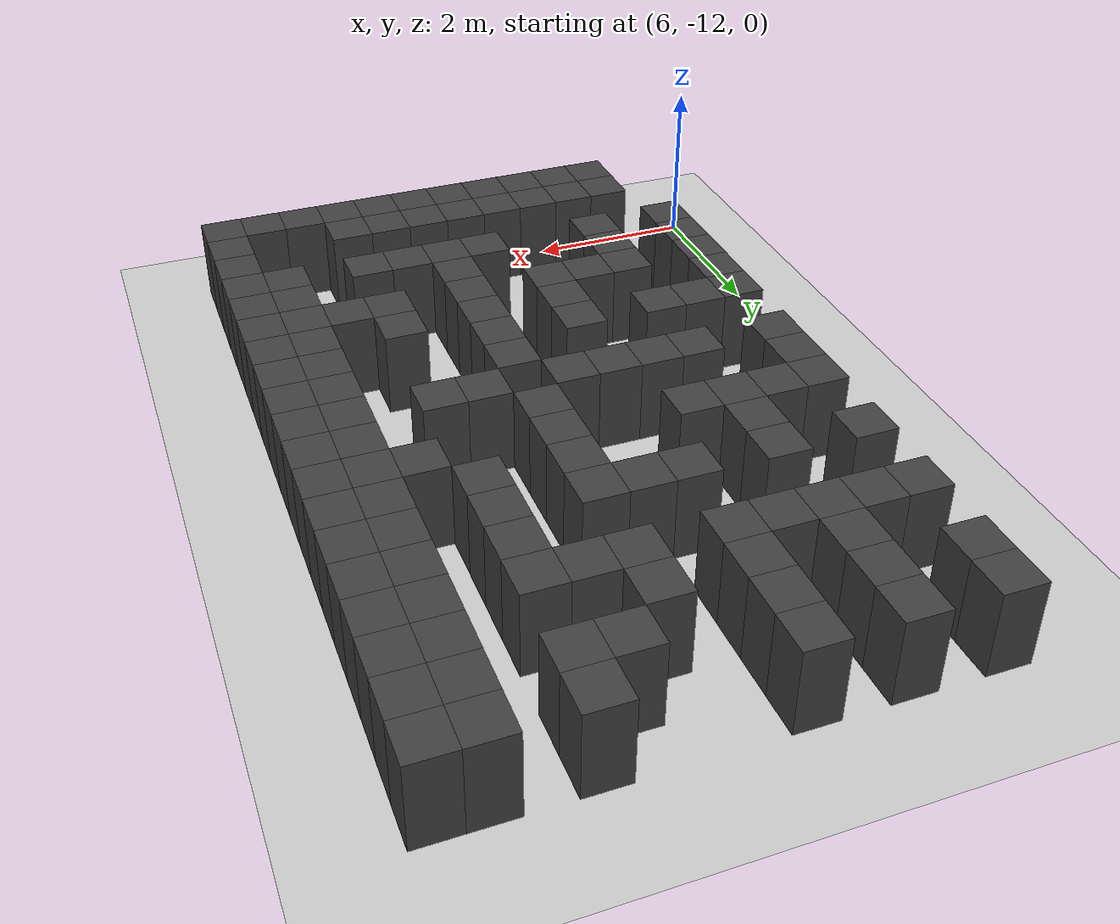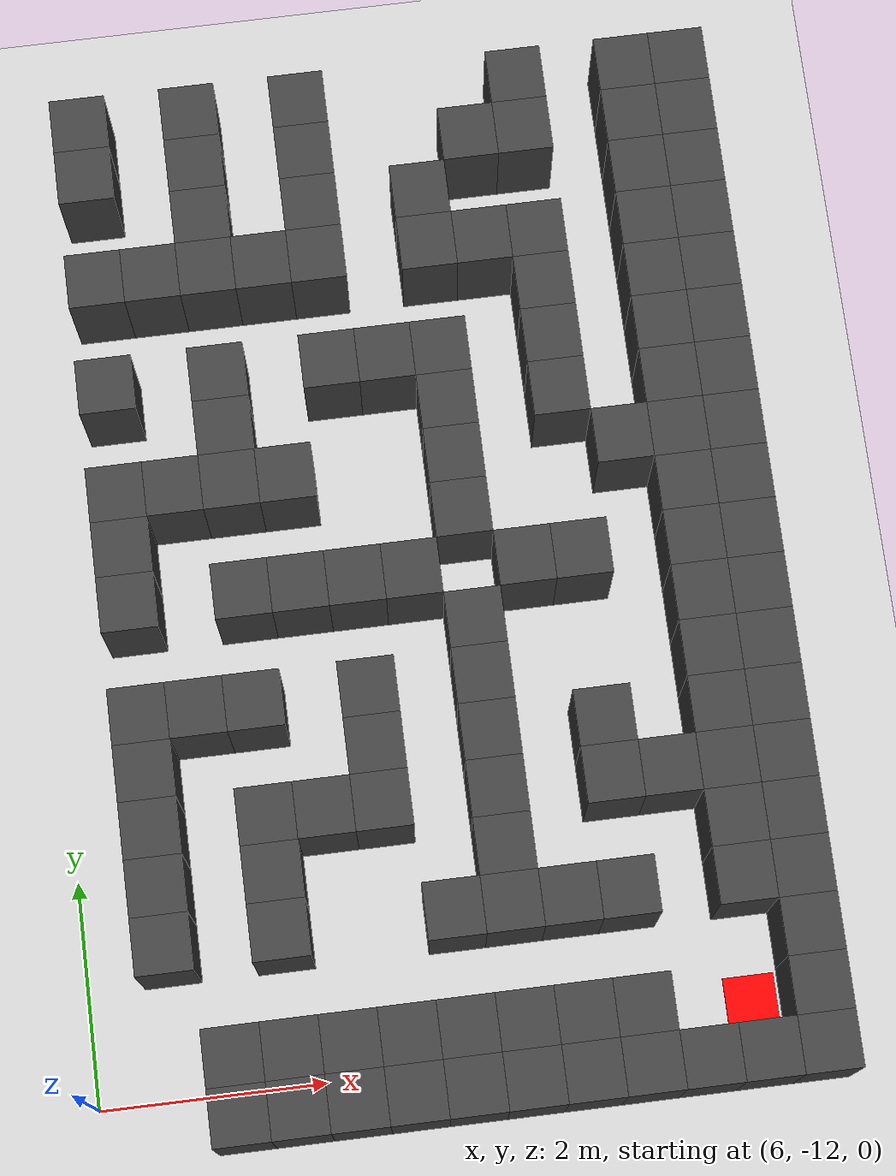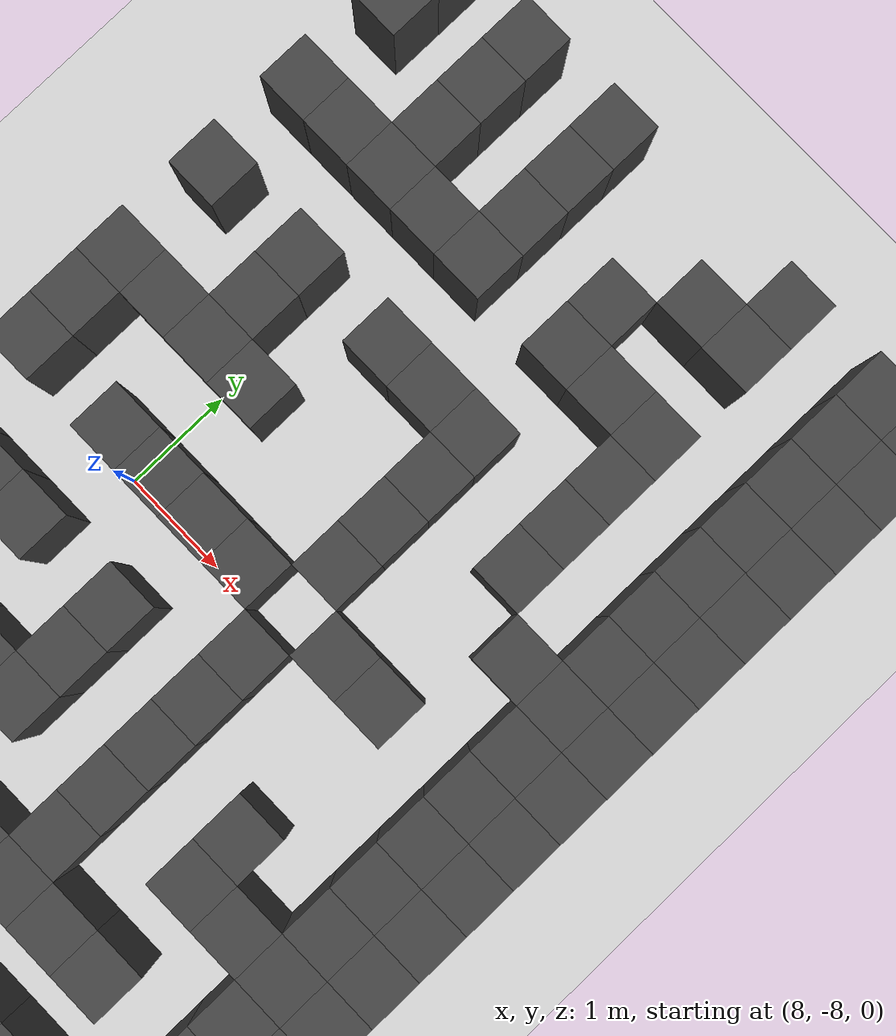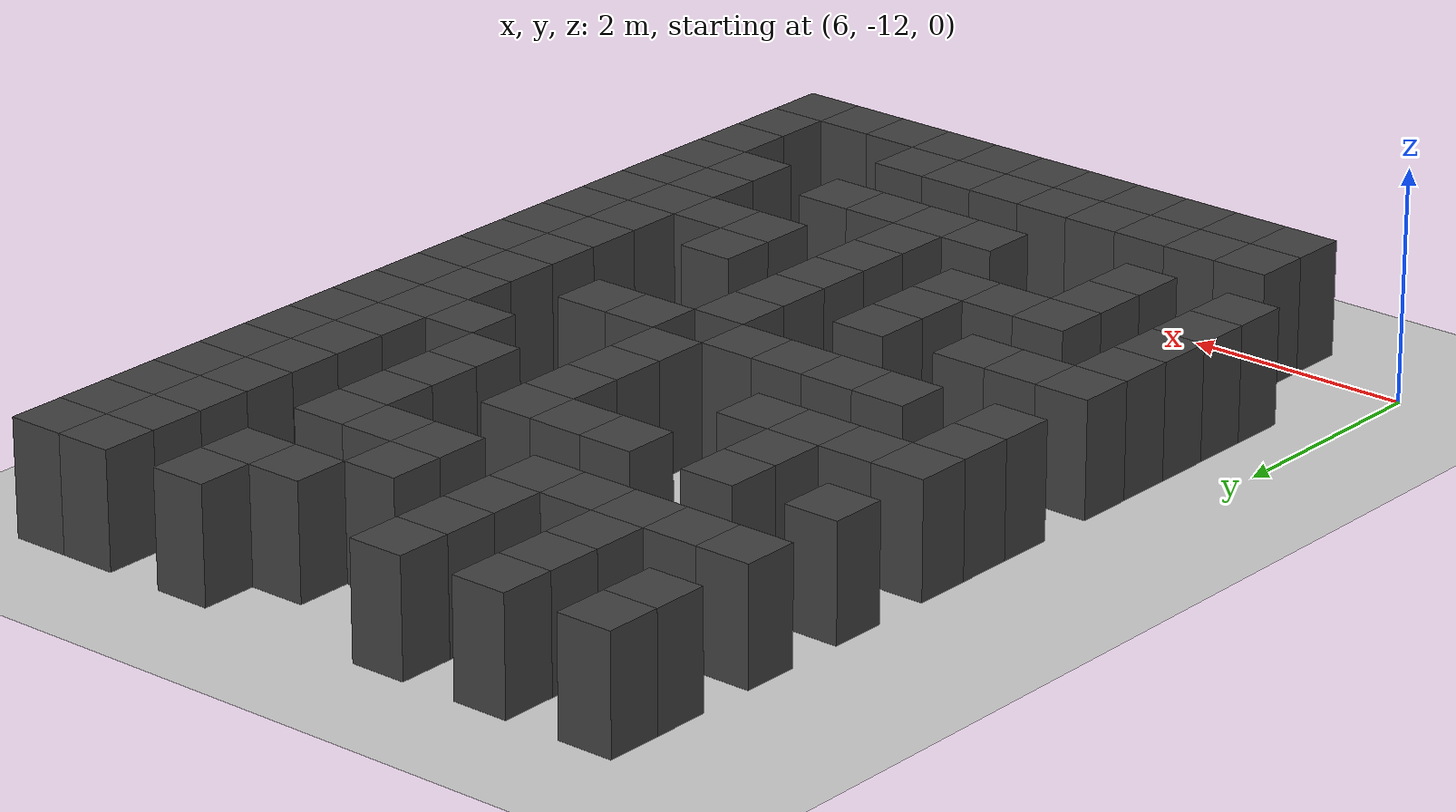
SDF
<sdf version="1.7">
 <world name="map_16884">
  <model name="ground_plane">
   <static>true</static>
   <link name="link">
    <collision name="collision">
     <geometry><plane><normal>0 0 1</normal><size>200 200</size></plane></geometry>
    </collision>
    <visual name="visual">
     <geometry><plane><normal>0 0 1</normal><size>200 200</size></plane></geometry>
     <material><ambient>0.8 0.8 0.8 1</ambient><diffuse>0.8 0.8 0.8 1</diffuse></material>
    </visual>
   </link>
  </model>
  <model name="maze_environment">
   <static>true</static>
   <link name="wall_768">
    <pose>6.750 -3.250 0.500 0 0 0</pose>
    <collision name="col"><geometry><box><size>0.5 0.5 1.0</size></box></geometry></collision>
    <visual name="vis">
     <geometry><box><size>0.5 0.5 1.0</size></box></geometry>
     <material><ambient>0.15 0.15 0.15 1</ambient><diffuse>0.25 0.25 0.25 1</diffuse></material>
    </visual>
   </link>
   <link name="wall_769">
    <pose>7.750 -3.250 0.500 0 0 0</pose>
    <collision name="col"><geometry><box><size>0.5 0.5 1.0</size></box></geometry></collision>
    <visual name="vis">
     <geometry><box><size>0.5 0.5 1.0</size></box></geometry>
     <material><ambient>0.15 0.15 0.15 1</ambient><diffuse>0.25 0.25 0.25 1</diffuse></material>
    </visual>
   </link>
   <link name="wall_770">
    <pose>8.750 -3.250 0.500 0 0 0</pose>
    <collision name="col"><geometry><box><size>0.5 0.5 1.0</size></box></geometry></collision>
    <visual name="vis">
     <geometry><box><size>0.5 0.5 1.0</size></box></geometry>
     <material><ambient>0.15 0.15 0.15 1</ambient><diffuse>0.25 0.25 0.25 1</diffuse></material>
    </visual>
   </link>
   <link name="wall_771">
    <pose>10.750 -3.250 0.500 0 0 0</pose>
    <collision name="col"><geometry><box><size>0.5 0.5 1.0</size></box></geometry></collision>
    <visual name="vis">
     <geometry><box><size>0.5 0.5 1.0</size></box></geometry>
     <material><ambient>0.15 0.15 0.15 1</ambient><diffuse>0.25 0.25 0.25 1</diffuse></material>
    </visual>
   </link>
   <link name="wall_772">
    <pose>11.750 -3.250 0.500 0 0 0</pose>
    <collision name="col"><geometry><box><size>0.5 0.5 1.0</size></box></geometry></collision>
    <visual name="vis">
     <geometry><box><size>0.5 0.5 1.0</size></box></geometry>
     <material><ambient>0.15 0.15 0.15 1</ambient><diffuse>0.25 0.25 0.25 1</diffuse></material>
    </visual>
   </link>
   <link name="wall_773">
    <pose>12.250 -3.250 0.500 0 0 0</pose>
    <collision name="col"><geometry><box><size>0.5 0.5 1.0</size></box></geometry></collision>
    <visual name="vis">
     <geometry><box><size>0.5 0.5 1.0</size></box></geometry>
     <material><ambient>0.15 0.15 0.15 1</ambient><diffuse>0.25 0.25 0.25 1</diffuse></material>
    </visual>
   </link>
   <link name="wall_800">
    <pose>6.750 -3.750 0.500 0 0 0</pose>
    <collision name="col"><geometry><box><size>0.5 0.5 1.0</size></box></geometry></collision>
    <visual name="vis">
     <geometry><box><size>0.5 0.5 1.0</size></box></geometry>
     <material><ambient>0.15 0.15 0.15 1</ambient><diffuse>0.25 0.25 0.25 1</diffuse></material>
    </visual>
   </link>
   <link name="wall_801">
    <pose>7.750 -3.750 0.500 0 0 0</pose>
    <collision name="col"><geometry><box><size>0.5 0.5 1.0</size></box></geometry></collision>
    <visual name="vis">
     <geometry><box><size>0.5 0.5 1.0</size></box></geometry>
     <material><ambient>0.15 0.15 0.15 1</ambient><diffuse>0.25 0.25 0.25 1</diffuse></material>
    </visual>
   </link>
   <link name="wall_802">
    <pose>8.750 -3.750 0.500 0 0 0</pose>
    <collision name="col"><geometry><box><size>0.5 0.5 1.0</size></box></geometry></collision>
    <visual name="vis">
     <geometry><box><size>0.5 0.5 1.0</size></box></geometry>
     <material><ambient>0.15 0.15 0.15 1</ambient><diffuse>0.25 0.25 0.25 1</diffuse></material>
    </visual>
   </link>
   <link name="wall_803">
    <pose>10.250 -3.750 0.500 0 0 0</pose>
    <collision name="col"><geometry><box><size>0.5 0.5 1.0</size></box></geometry></collision>
    <visual name="vis">
     <geometry><box><size>0.5 0.5 1.0</size></box></geometry>
     <material><ambient>0.15 0.15 0.15 1</ambient><diffuse>0.25 0.25 0.25 1</diffuse></material>
    </visual>
   </link>
   <link name="wall_804">
    <pose>10.750 -3.750 0.500 0 0 0</pose>
    <collision name="col"><geometry><box><size>0.5 0.5 1.0</size></box></geometry></collision>
    <visual name="vis">
     <geometry><box><size>0.5 0.5 1.0</size></box></geometry>
     <material><ambient>0.15 0.15 0.15 1</ambient><diffuse>0.25 0.25 0.25 1</diffuse></material>
    </visual>
   </link>
   <link name="wall_805">
    <pose>11.750 -3.750 0.500 0 0 0</pose>
    <collision name="col"><geometry><box><size>0.5 0.5 1.0</size></box></geometry></collision>
    <visual name="vis">
     <geometry><box><size>0.5 0.5 1.0</size></box></geometry>
     <material><ambient>0.15 0.15 0.15 1</ambient><diffuse>0.25 0.25 0.25 1</diffuse></material>
    </visual>
   </link>
   <link name="wall_806">
    <pose>12.250 -3.750 0.500 0 0 0</pose>
    <collision name="col"><geometry><box><size>0.5 0.5 1.0</size></box></geometry></collision>
    <visual name="vis">
     <geometry><box><size>0.5 0.5 1.0</size></box></geometry>
     <material><ambient>0.15 0.15 0.15 1</ambient><diffuse>0.25 0.25 0.25 1</diffuse></material>
    </visual>
   </link>
   <link name="wall_814">
    <pose>7.750 -4.250 0.500 0 0 0</pose>
    <collision name="col"><geometry><box><size>0.5 0.5 1.0</size></box></geometry></collision>
    <visual name="vis">
     <geometry><box><size>0.5 0.5 1.0</size></box></geometry>
     <material><ambient>0.15 0.15 0.15 1</ambient><diffuse>0.25 0.25 0.25 1</diffuse></material>
    </visual>
   </link>
   <link name="wall_815">
    <pose>8.750 -4.250 0.500 0 0 0</pose>
    <collision name="col"><geometry><box><size>0.5 0.5 1.0</size></box></geometry></collision>
    <visual name="vis">
     <geometry><box><size>0.5 0.5 1.0</size></box></geometry>
     <material><ambient>0.15 0.15 0.15 1</ambient><diffuse>0.25 0.25 0.25 1</diffuse></material>
    </visual>
   </link>
   <link name="wall_816">
    <pose>9.750 -4.250 0.500 0 0 0</pose>
    <collision name="col"><geometry><box><size>0.5 0.5 1.0</size></box></geometry></collision>
    <visual name="vis">
     <geometry><box><size>0.5 0.5 1.0</size></box></geometry>
     <material><ambient>0.15 0.15 0.15 1</ambient><diffuse>0.25 0.25 0.25 1</diffuse></material>
    </visual>
   </link>
   <link name="wall_817">
    <pose>11.750 -4.250 0.500 0 0 0</pose>
    <collision name="col"><geometry><box><size>0.5 0.5 1.0</size></box></geometry></collision>
    <visual name="vis">
     <geometry><box><size>0.5 0.5 1.0</size></box></geometry>
     <material><ambient>0.15 0.15 0.15 1</ambient><diffuse>0.25 0.25 0.25 1</diffuse></material>
    </visual>
   </link>
   <link name="wall_818">
    <pose>12.250 -4.250 0.500 0 0 0</pose>
    <collision name="col"><geometry><box><size>0.5 0.5 1.0</size></box></geometry></collision>
    <visual name="vis">
     <geometry><box><size>0.5 0.5 1.0</size></box></geometry>
     <material><ambient>0.15 0.15 0.15 1</ambient><diffuse>0.25 0.25 0.25 1</diffuse></material>
    </visual>
   </link>
   <link name="wall_850">
    <pose>6.750 -4.750 0.500 0 0 0</pose>
    <collision name="col"><geometry><box><size>0.5 0.5 1.0</size></box></geometry></collision>
    <visual name="vis">
     <geometry><box><size>0.5 0.5 1.0</size></box></geometry>
     <material><ambient>0.15 0.15 0.15 1</ambient><diffuse>0.25 0.25 0.25 1</diffuse></material>
    </visual>
   </link>
   <link name="wall_851">
    <pose>7.250 -4.750 0.500 0 0 0</pose>
    <collision name="col"><geometry><box><size>0.5 0.5 1.0</size></box></geometry></collision>
    <visual name="vis">
     <geometry><box><size>0.5 0.5 1.0</size></box></geometry>
     <material><ambient>0.15 0.15 0.15 1</ambient><diffuse>0.25 0.25 0.25 1</diffuse></material>
    </visual>
   </link>
   <link name="wall_852">
    <pose>7.750 -4.750 0.500 0 0 0</pose>
    <collision name="col"><geometry><box><size>0.5 0.5 1.0</size></box></geometry></collision>
    <visual name="vis">
     <geometry><box><size>0.5 0.5 1.0</size></box></geometry>
     <material><ambient>0.15 0.15 0.15 1</ambient><diffuse>0.25 0.25 0.25 1</diffuse></material>
    </visual>
   </link>
   <link name="wall_853">
    <pose>8.250 -4.750 0.500 0 0 0</pose>
    <collision name="col"><geometry><box><size>0.5 0.5 1.0</size></box></geometry></collision>
    <visual name="vis">
     <geometry><box><size>0.5 0.5 1.0</size></box></geometry>
     <material><ambient>0.15 0.15 0.15 1</ambient><diffuse>0.25 0.25 0.25 1</diffuse></material>
    </visual>
   </link>
   <link name="wall_854">
    <pose>8.750 -4.750 0.500 0 0 0</pose>
    <collision name="col"><geometry><box><size>0.5 0.5 1.0</size></box></geometry></collision>
    <visual name="vis">
     <geometry><box><size>0.5 0.5 1.0</size></box></geometry>
     <material><ambient>0.15 0.15 0.15 1</ambient><diffuse>0.25 0.25 0.25 1</diffuse></material>
    </visual>
   </link>
   <link name="wall_855">
    <pose>9.750 -4.750 0.500 0 0 0</pose>
    <collision name="col"><geometry><box><size>0.5 0.5 1.0</size></box></geometry></collision>
    <visual name="vis">
     <geometry><box><size>0.5 0.5 1.0</size></box></geometry>
     <material><ambient>0.15 0.15 0.15 1</ambient><diffuse>0.25 0.25 0.25 1</diffuse></material>
    </visual>
   </link>
   <link name="wall_856">
    <pose>10.250 -4.750 0.500 0 0 0</pose>
    <collision name="col"><geometry><box><size>0.5 0.5 1.0</size></box></geometry></collision>
    <visual name="vis">
     <geometry><box><size>0.5 0.5 1.0</size></box></geometry>
     <material><ambient>0.15 0.15 0.15 1</ambient><diffuse>0.25 0.25 0.25 1</diffuse></material>
    </visual>
   </link>
   <link name="wall_857">
    <pose>10.750 -4.750 0.500 0 0 0</pose>
    <collision name="col"><geometry><box><size>0.5 0.5 1.0</size></box></geometry></collision>
    <visual name="vis">
     <geometry><box><size>0.5 0.5 1.0</size></box></geometry>
     <material><ambient>0.15 0.15 0.15 1</ambient><diffuse>0.25 0.25 0.25 1</diffuse></material>
    </visual>
   </link>
   <link name="wall_858">
    <pose>11.750 -4.750 0.500 0 0 0</pose>
    <collision name="col"><geometry><box><size>0.5 0.5 1.0</size></box></geometry></collision>
    <visual name="vis">
     <geometry><box><size>0.5 0.5 1.0</size></box></geometry>
     <material><ambient>0.15 0.15 0.15 1</ambient><diffuse>0.25 0.25 0.25 1</diffuse></material>
    </visual>
   </link>
   <link name="wall_859">
    <pose>12.250 -4.750 0.500 0 0 0</pose>
    <collision name="col"><geometry><box><size>0.5 0.5 1.0</size></box></geometry></collision>
    <visual name="vis">
     <geometry><box><size>0.5 0.5 1.0</size></box></geometry>
     <material><ambient>0.15 0.15 0.15 1</ambient><diffuse>0.25 0.25 0.25 1</diffuse></material>
    </visual>
   </link>
   <link name="wall_868">
    <pose>10.750 -5.250 0.500 0 0 0</pose>
    <collision name="col"><geometry><box><size>0.5 0.5 1.0</size></box></geometry></collision>
    <visual name="vis">
     <geometry><box><size>0.5 0.5 1.0</size></box></geometry>
     <material><ambient>0.15 0.15 0.15 1</ambient><diffuse>0.25 0.25 0.25 1</diffuse></material>
    </visual>
   </link>
   <link name="wall_869">
    <pose>11.750 -5.250 0.500 0 0 0</pose>
    <collision name="col"><geometry><box><size>0.5 0.5 1.0</size></box></geometry></collision>
    <visual name="vis">
     <geometry><box><size>0.5 0.5 1.0</size></box></geometry>
     <material><ambient>0.15 0.15 0.15 1</ambient><diffuse>0.25 0.25 0.25 1</diffuse></material>
    </visual>
   </link>
   <link name="wall_870">
    <pose>12.250 -5.250 0.500 0 0 0</pose>
    <collision name="col"><geometry><box><size>0.5 0.5 1.0</size></box></geometry></collision>
    <visual name="vis">
     <geometry><box><size>0.5 0.5 1.0</size></box></geometry>
     <material><ambient>0.15 0.15 0.15 1</ambient><diffuse>0.25 0.25 0.25 1</diffuse></material>
    </visual>
   </link>
   <link name="wall_898">
    <pose>6.750 -5.750 0.500 0 0 0</pose>
    <collision name="col"><geometry><box><size>0.5 0.5 1.0</size></box></geometry></collision>
    <visual name="vis">
     <geometry><box><size>0.5 0.5 1.0</size></box></geometry>
     <material><ambient>0.15 0.15 0.15 1</ambient><diffuse>0.25 0.25 0.25 1</diffuse></material>
    </visual>
   </link>
   <link name="wall_899">
    <pose>7.750 -5.750 0.500 0 0 0</pose>
    <collision name="col"><geometry><box><size>0.5 0.5 1.0</size></box></geometry></collision>
    <visual name="vis">
     <geometry><box><size>0.5 0.5 1.0</size></box></geometry>
     <material><ambient>0.15 0.15 0.15 1</ambient><diffuse>0.25 0.25 0.25 1</diffuse></material>
    </visual>
   </link>
   <link name="wall_900">
    <pose>8.750 -5.750 0.500 0 0 0</pose>
    <collision name="col"><geometry><box><size>0.5 0.5 1.0</size></box></geometry></collision>
    <visual name="vis">
     <geometry><box><size>0.5 0.5 1.0</size></box></geometry>
     <material><ambient>0.15 0.15 0.15 1</ambient><diffuse>0.25 0.25 0.25 1</diffuse></material>
    </visual>
   </link>
   <link name="wall_901">
    <pose>9.250 -5.750 0.500 0 0 0</pose>
    <collision name="col"><geometry><box><size>0.5 0.5 1.0</size></box></geometry></collision>
    <visual name="vis">
     <geometry><box><size>0.5 0.5 1.0</size></box></geometry>
     <material><ambient>0.15 0.15 0.15 1</ambient><diffuse>0.25 0.25 0.25 1</diffuse></material>
    </visual>
   </link>
   <link name="wall_902">
    <pose>9.750 -5.750 0.500 0 0 0</pose>
    <collision name="col"><geometry><box><size>0.5 0.5 1.0</size></box></geometry></collision>
    <visual name="vis">
     <geometry><box><size>0.5 0.5 1.0</size></box></geometry>
     <material><ambient>0.15 0.15 0.15 1</ambient><diffuse>0.25 0.25 0.25 1</diffuse></material>
    </visual>
   </link>
   <link name="wall_903">
    <pose>10.750 -5.750 0.500 0 0 0</pose>
    <collision name="col"><geometry><box><size>0.5 0.5 1.0</size></box></geometry></collision>
    <visual name="vis">
     <geometry><box><size>0.5 0.5 1.0</size></box></geometry>
     <material><ambient>0.15 0.15 0.15 1</ambient><diffuse>0.25 0.25 0.25 1</diffuse></material>
    </visual>
   </link>
   <link name="wall_904">
    <pose>11.750 -5.750 0.500 0 0 0</pose>
    <collision name="col"><geometry><box><size>0.5 0.5 1.0</size></box></geometry></collision>
    <visual name="vis">
     <geometry><box><size>0.5 0.5 1.0</size></box></geometry>
     <material><ambient>0.15 0.15 0.15 1</ambient><diffuse>0.25 0.25 0.25 1</diffuse></material>
    </visual>
   </link>
   <link name="wall_905">
    <pose>12.250 -5.750 0.500 0 0 0</pose>
    <collision name="col"><geometry><box><size>0.5 0.5 1.0</size></box></geometry></collision>
    <visual name="vis">
     <geometry><box><size>0.5 0.5 1.0</size></box></geometry>
     <material><ambient>0.15 0.15 0.15 1</ambient><diffuse>0.25 0.25 0.25 1</diffuse></material>
    </visual>
   </link>
   <link name="wall_916">
    <pose>7.750 -6.250 0.500 0 0 0</pose>
    <collision name="col"><geometry><box><size>0.5 0.5 1.0</size></box></geometry></collision>
    <visual name="vis">
     <geometry><box><size>0.5 0.5 1.0</size></box></geometry>
     <material><ambient>0.15 0.15 0.15 1</ambient><diffuse>0.25 0.25 0.25 1</diffuse></material>
    </visual>
   </link>
   <link name="wall_917">
    <pose>9.750 -6.250 0.500 0 0 0</pose>
    <collision name="col"><geometry><box><size>0.5 0.5 1.0</size></box></geometry></collision>
    <visual name="vis">
     <geometry><box><size>0.5 0.5 1.0</size></box></geometry>
     <material><ambient>0.15 0.15 0.15 1</ambient><diffuse>0.25 0.25 0.25 1</diffuse></material>
    </visual>
   </link>
   <link name="wall_918">
    <pose>10.750 -6.250 0.500 0 0 0</pose>
    <collision name="col"><geometry><box><size>0.5 0.5 1.0</size></box></geometry></collision>
    <visual name="vis">
     <geometry><box><size>0.5 0.5 1.0</size></box></geometry>
     <material><ambient>0.15 0.15 0.15 1</ambient><diffuse>0.25 0.25 0.25 1</diffuse></material>
    </visual>
   </link>
   <link name="wall_919">
    <pose>11.750 -6.250 0.500 0 0 0</pose>
    <collision name="col"><geometry><box><size>0.5 0.5 1.0</size></box></geometry></collision>
    <visual name="vis">
     <geometry><box><size>0.5 0.5 1.0</size></box></geometry>
     <material><ambient>0.15 0.15 0.15 1</ambient><diffuse>0.25 0.25 0.25 1</diffuse></material>
    </visual>
   </link>
   <link name="wall_920">
    <pose>12.250 -6.250 0.500 0 0 0</pose>
    <collision name="col"><geometry><box><size>0.5 0.5 1.0</size></box></geometry></collision>
    <visual name="vis">
     <geometry><box><size>0.5 0.5 1.0</size></box></geometry>
     <material><ambient>0.15 0.15 0.15 1</ambient><diffuse>0.25 0.25 0.25 1</diffuse></material>
    </visual>
   </link>
   <link name="wall_945">
    <pose>6.750 -6.750 0.500 0 0 0</pose>
    <collision name="col"><geometry><box><size>0.5 0.5 1.0</size></box></geometry></collision>
    <visual name="vis">
     <geometry><box><size>0.5 0.5 1.0</size></box></geometry>
     <material><ambient>0.15 0.15 0.15 1</ambient><diffuse>0.25 0.25 0.25 1</diffuse></material>
    </visual>
   </link>
   <link name="wall_946">
    <pose>7.250 -6.750 0.500 0 0 0</pose>
    <collision name="col"><geometry><box><size>0.5 0.5 1.0</size></box></geometry></collision>
    <visual name="vis">
     <geometry><box><size>0.5 0.5 1.0</size></box></geometry>
     <material><ambient>0.15 0.15 0.15 1</ambient><diffuse>0.25 0.25 0.25 1</diffuse></material>
    </visual>
   </link>
   <link name="wall_947">
    <pose>7.750 -6.750 0.500 0 0 0</pose>
    <collision name="col"><geometry><box><size>0.5 0.5 1.0</size></box></geometry></collision>
    <visual name="vis">
     <geometry><box><size>0.5 0.5 1.0</size></box></geometry>
     <material><ambient>0.15 0.15 0.15 1</ambient><diffuse>0.25 0.25 0.25 1</diffuse></material>
    </visual>
   </link>
   <link name="wall_948">
    <pose>8.250 -6.750 0.500 0 0 0</pose>
    <collision name="col"><geometry><box><size>0.5 0.5 1.0</size></box></geometry></collision>
    <visual name="vis">
     <geometry><box><size>0.5 0.5 1.0</size></box></geometry>
     <material><ambient>0.15 0.15 0.15 1</ambient><diffuse>0.25 0.25 0.25 1</diffuse></material>
    </visual>
   </link>
   <link name="wall_949">
    <pose>9.750 -6.750 0.500 0 0 0</pose>
    <collision name="col"><geometry><box><size>0.5 0.5 1.0</size></box></geometry></collision>
    <visual name="vis">
     <geometry><box><size>0.5 0.5 1.0</size></box></geometry>
     <material><ambient>0.15 0.15 0.15 1</ambient><diffuse>0.25 0.25 0.25 1</diffuse></material>
    </visual>
   </link>
   <link name="wall_950">
    <pose>11.250 -6.750 0.500 0 0 0</pose>
    <collision name="col"><geometry><box><size>0.5 0.5 1.0</size></box></geometry></collision>
    <visual name="vis">
     <geometry><box><size>0.5 0.5 1.0</size></box></geometry>
     <material><ambient>0.15 0.15 0.15 1</ambient><diffuse>0.25 0.25 0.25 1</diffuse></material>
    </visual>
   </link>
   <link name="wall_951">
    <pose>11.750 -6.750 0.500 0 0 0</pose>
    <collision name="col"><geometry><box><size>0.5 0.5 1.0</size></box></geometry></collision>
    <visual name="vis">
     <geometry><box><size>0.5 0.5 1.0</size></box></geometry>
     <material><ambient>0.15 0.15 0.15 1</ambient><diffuse>0.25 0.25 0.25 1</diffuse></material>
    </visual>
   </link>
   <link name="wall_952">
    <pose>12.250 -6.750 0.500 0 0 0</pose>
    <collision name="col"><geometry><box><size>0.5 0.5 1.0</size></box></geometry></collision>
    <visual name="vis">
     <geometry><box><size>0.5 0.5 1.0</size></box></geometry>
     <material><ambient>0.15 0.15 0.15 1</ambient><diffuse>0.25 0.25 0.25 1</diffuse></material>
    </visual>
   </link>
   <link name="wall_963">
    <pose>6.750 -7.250 0.500 0 0 0</pose>
    <collision name="col"><geometry><box><size>0.5 0.5 1.0</size></box></geometry></collision>
    <visual name="vis">
     <geometry><box><size>0.5 0.5 1.0</size></box></geometry>
     <material><ambient>0.15 0.15 0.15 1</ambient><diffuse>0.25 0.25 0.25 1</diffuse></material>
    </visual>
   </link>
   <link name="wall_964">
    <pose>9.750 -7.250 0.500 0 0 0</pose>
    <collision name="col"><geometry><box><size>0.5 0.5 1.0</size></box></geometry></collision>
    <visual name="vis">
     <geometry><box><size>0.5 0.5 1.0</size></box></geometry>
     <material><ambient>0.15 0.15 0.15 1</ambient><diffuse>0.25 0.25 0.25 1</diffuse></material>
    </visual>
   </link>
   <link name="wall_965">
    <pose>11.750 -7.250 0.500 0 0 0</pose>
    <collision name="col"><geometry><box><size>0.5 0.5 1.0</size></box></geometry></collision>
    <visual name="vis">
     <geometry><box><size>0.5 0.5 1.0</size></box></geometry>
     <material><ambient>0.15 0.15 0.15 1</ambient><diffuse>0.25 0.25 0.25 1</diffuse></material>
    </visual>
   </link>
   <link name="wall_966">
    <pose>12.250 -7.250 0.500 0 0 0</pose>
    <collision name="col"><geometry><box><size>0.5 0.5 1.0</size></box></geometry></collision>
    <visual name="vis">
     <geometry><box><size>0.5 0.5 1.0</size></box></geometry>
     <material><ambient>0.15 0.15 0.15 1</ambient><diffuse>0.25 0.25 0.25 1</diffuse></material>
    </visual>
   </link>
   <link name="wall_994">
    <pose>6.750 -7.750 0.500 0 0 0</pose>
    <collision name="col"><geometry><box><size>0.5 0.5 1.0</size></box></geometry></collision>
    <visual name="vis">
     <geometry><box><size>0.5 0.5 1.0</size></box></geometry>
     <material><ambient>0.15 0.15 0.15 1</ambient><diffuse>0.25 0.25 0.25 1</diffuse></material>
    </visual>
   </link>
   <link name="wall_995">
    <pose>7.750 -7.750 0.500 0 0 0</pose>
    <collision name="col"><geometry><box><size>0.5 0.5 1.0</size></box></geometry></collision>
    <visual name="vis">
     <geometry><box><size>0.5 0.5 1.0</size></box></geometry>
     <material><ambient>0.15 0.15 0.15 1</ambient><diffuse>0.25 0.25 0.25 1</diffuse></material>
    </visual>
   </link>
   <link name="wall_996">
    <pose>8.250 -7.750 0.500 0 0 0</pose>
    <collision name="col"><geometry><box><size>0.5 0.5 1.0</size></box></geometry></collision>
    <visual name="vis">
     <geometry><box><size>0.5 0.5 1.0</size></box></geometry>
     <material><ambient>0.15 0.15 0.15 1</ambient><diffuse>0.25 0.25 0.25 1</diffuse></material>
    </visual>
   </link>
   <link name="wall_997">
    <pose>8.750 -7.750 0.500 0 0 0</pose>
    <collision name="col"><geometry><box><size>0.5 0.5 1.0</size></box></geometry></collision>
    <visual name="vis">
     <geometry><box><size>0.5 0.5 1.0</size></box></geometry>
     <material><ambient>0.15 0.15 0.15 1</ambient><diffuse>0.25 0.25 0.25 1</diffuse></material>
    </visual>
   </link>
   <link name="wall_998">
    <pose>9.250 -7.750 0.500 0 0 0</pose>
    <collision name="col"><geometry><box><size>0.5 0.5 1.0</size></box></geometry></collision>
    <visual name="vis">
     <geometry><box><size>0.5 0.5 1.0</size></box></geometry>
     <material><ambient>0.15 0.15 0.15 1</ambient><diffuse>0.25 0.25 0.25 1</diffuse></material>
    </visual>
   </link>
   <link name="wall_999">
    <pose>10.250 -7.750 0.500 0 0 0</pose>
    <collision name="col"><geometry><box><size>0.5 0.5 1.0</size></box></geometry></collision>
    <visual name="vis">
     <geometry><box><size>0.5 0.5 1.0</size></box></geometry>
     <material><ambient>0.15 0.15 0.15 1</ambient><diffuse>0.25 0.25 0.25 1</diffuse></material>
    </visual>
   </link>
   <link name="wall_1000">
    <pose>10.750 -7.750 0.500 0 0 0</pose>
    <collision name="col"><geometry><box><size>0.5 0.5 1.0</size></box></geometry></collision>
    <visual name="vis">
     <geometry><box><size>0.5 0.5 1.0</size></box></geometry>
     <material><ambient>0.15 0.15 0.15 1</ambient><diffuse>0.25 0.25 0.25 1</diffuse></material>
    </visual>
   </link>
   <link name="wall_1001">
    <pose>11.750 -7.750 0.500 0 0 0</pose>
    <collision name="col"><geometry><box><size>0.5 0.5 1.0</size></box></geometry></collision>
    <visual name="vis">
     <geometry><box><size>0.5 0.5 1.0</size></box></geometry>
     <material><ambient>0.15 0.15 0.15 1</ambient><diffuse>0.25 0.25 0.25 1</diffuse></material>
    </visual>
   </link>
   <link name="wall_1002">
    <pose>12.250 -7.750 0.500 0 0 0</pose>
    <collision name="col"><geometry><box><size>0.5 0.5 1.0</size></box></geometry></collision>
    <visual name="vis">
     <geometry><box><size>0.5 0.5 1.0</size></box></geometry>
     <material><ambient>0.15 0.15 0.15 1</ambient><diffuse>0.25 0.25 0.25 1</diffuse></material>
    </visual>
   </link>
   <link name="wall_1012">
    <pose>9.750 -8.250 0.500 0 0 0</pose>
    <collision name="col"><geometry><box><size>0.5 0.5 1.0</size></box></geometry></collision>
    <visual name="vis">
     <geometry><box><size>0.5 0.5 1.0</size></box></geometry>
     <material><ambient>0.15 0.15 0.15 1</ambient><diffuse>0.25 0.25 0.25 1</diffuse></material>
    </visual>
   </link>
   <link name="wall_1013">
    <pose>11.750 -8.250 0.500 0 0 0</pose>
    <collision name="col"><geometry><box><size>0.5 0.5 1.0</size></box></geometry></collision>
    <visual name="vis">
     <geometry><box><size>0.5 0.5 1.0</size></box></geometry>
     <material><ambient>0.15 0.15 0.15 1</ambient><diffuse>0.25 0.25 0.25 1</diffuse></material>
    </visual>
   </link>
   <link name="wall_1014">
    <pose>12.250 -8.250 0.500 0 0 0</pose>
    <collision name="col"><geometry><box><size>0.5 0.5 1.0</size></box></geometry></collision>
    <visual name="vis">
     <geometry><box><size>0.5 0.5 1.0</size></box></geometry>
     <material><ambient>0.15 0.15 0.15 1</ambient><diffuse>0.25 0.25 0.25 1</diffuse></material>
    </visual>
   </link>
   <link name="wall_1040">
    <pose>6.750 -8.750 0.500 0 0 0</pose>
    <collision name="col"><geometry><box><size>0.5 0.5 1.0</size></box></geometry></collision>
    <visual name="vis">
     <geometry><box><size>0.5 0.5 1.0</size></box></geometry>
     <material><ambient>0.15 0.15 0.15 1</ambient><diffuse>0.25 0.25 0.25 1</diffuse></material>
    </visual>
   </link>
   <link name="wall_1041">
    <pose>7.250 -8.750 0.500 0 0 0</pose>
    <collision name="col"><geometry><box><size>0.5 0.5 1.0</size></box></geometry></collision>
    <visual name="vis">
     <geometry><box><size>0.5 0.5 1.0</size></box></geometry>
     <material><ambient>0.15 0.15 0.15 1</ambient><diffuse>0.25 0.25 0.25 1</diffuse></material>
    </visual>
   </link>
   <link name="wall_1042">
    <pose>7.750 -8.750 0.500 0 0 0</pose>
    <collision name="col"><geometry><box><size>0.5 0.5 1.0</size></box></geometry></collision>
    <visual name="vis">
     <geometry><box><size>0.5 0.5 1.0</size></box></geometry>
     <material><ambient>0.15 0.15 0.15 1</ambient><diffuse>0.25 0.25 0.25 1</diffuse></material>
    </visual>
   </link>
   <link name="wall_1043">
    <pose>8.750 -8.750 0.500 0 0 0</pose>
    <collision name="col"><geometry><box><size>0.5 0.5 1.0</size></box></geometry></collision>
    <visual name="vis">
     <geometry><box><size>0.5 0.5 1.0</size></box></geometry>
     <material><ambient>0.15 0.15 0.15 1</ambient><diffuse>0.25 0.25 0.25 1</diffuse></material>
    </visual>
   </link>
   <link name="wall_1044">
    <pose>9.750 -8.750 0.500 0 0 0</pose>
    <collision name="col"><geometry><box><size>0.5 0.5 1.0</size></box></geometry></collision>
    <visual name="vis">
     <geometry><box><size>0.5 0.5 1.0</size></box></geometry>
     <material><ambient>0.15 0.15 0.15 1</ambient><diffuse>0.25 0.25 0.25 1</diffuse></material>
    </visual>
   </link>
   <link name="wall_1045">
    <pose>11.750 -8.750 0.500 0 0 0</pose>
    <collision name="col"><geometry><box><size>0.5 0.5 1.0</size></box></geometry></collision>
    <visual name="vis">
     <geometry><box><size>0.5 0.5 1.0</size></box></geometry>
     <material><ambient>0.15 0.15 0.15 1</ambient><diffuse>0.25 0.25 0.25 1</diffuse></material>
    </visual>
   </link>
   <link name="wall_1046">
    <pose>12.250 -8.750 0.500 0 0 0</pose>
    <collision name="col"><geometry><box><size>0.5 0.5 1.0</size></box></geometry></collision>
    <visual name="vis">
     <geometry><box><size>0.5 0.5 1.0</size></box></geometry>
     <material><ambient>0.15 0.15 0.15 1</ambient><diffuse>0.25 0.25 0.25 1</diffuse></material>
    </visual>
   </link>
   <link name="wall_1058">
    <pose>6.750 -9.250 0.500 0 0 0</pose>
    <collision name="col"><geometry><box><size>0.5 0.5 1.0</size></box></geometry></collision>
    <visual name="vis">
     <geometry><box><size>0.5 0.5 1.0</size></box></geometry>
     <material><ambient>0.15 0.15 0.15 1</ambient><diffuse>0.25 0.25 0.25 1</diffuse></material>
    </visual>
   </link>
   <link name="wall_1059">
    <pose>8.750 -9.250 0.500 0 0 0</pose>
    <collision name="col"><geometry><box><size>0.5 0.5 1.0</size></box></geometry></collision>
    <visual name="vis">
     <geometry><box><size>0.5 0.5 1.0</size></box></geometry>
     <material><ambient>0.15 0.15 0.15 1</ambient><diffuse>0.25 0.25 0.25 1</diffuse></material>
    </visual>
   </link>
   <link name="wall_1060">
    <pose>9.750 -9.250 0.500 0 0 0</pose>
    <collision name="col"><geometry><box><size>0.5 0.5 1.0</size></box></geometry></collision>
    <visual name="vis">
     <geometry><box><size>0.5 0.5 1.0</size></box></geometry>
     <material><ambient>0.15 0.15 0.15 1</ambient><diffuse>0.25 0.25 0.25 1</diffuse></material>
    </visual>
   </link>
   <link name="wall_1061">
    <pose>10.750 -9.250 0.500 0 0 0</pose>
    <collision name="col"><geometry><box><size>0.5 0.5 1.0</size></box></geometry></collision>
    <visual name="vis">
     <geometry><box><size>0.5 0.5 1.0</size></box></geometry>
     <material><ambient>0.15 0.15 0.15 1</ambient><diffuse>0.25 0.25 0.25 1</diffuse></material>
    </visual>
   </link>
   <link name="wall_1062">
    <pose>11.750 -9.250 0.500 0 0 0</pose>
    <collision name="col"><geometry><box><size>0.5 0.5 1.0</size></box></geometry></collision>
    <visual name="vis">
     <geometry><box><size>0.5 0.5 1.0</size></box></geometry>
     <material><ambient>0.15 0.15 0.15 1</ambient><diffuse>0.25 0.25 0.25 1</diffuse></material>
    </visual>
   </link>
   <link name="wall_1063">
    <pose>12.250 -9.250 0.500 0 0 0</pose>
    <collision name="col"><geometry><box><size>0.5 0.5 1.0</size></box></geometry></collision>
    <visual name="vis">
     <geometry><box><size>0.5 0.5 1.0</size></box></geometry>
     <material><ambient>0.15 0.15 0.15 1</ambient><diffuse>0.25 0.25 0.25 1</diffuse></material>
    </visual>
   </link>
   <link name="wall_1091">
    <pose>6.750 -9.750 0.500 0 0 0</pose>
    <collision name="col"><geometry><box><size>0.5 0.5 1.0</size></box></geometry></collision>
    <visual name="vis">
     <geometry><box><size>0.5 0.5 1.0</size></box></geometry>
     <material><ambient>0.15 0.15 0.15 1</ambient><diffuse>0.25 0.25 0.25 1</diffuse></material>
    </visual>
   </link>
   <link name="wall_1092">
    <pose>7.750 -9.750 0.500 0 0 0</pose>
    <collision name="col"><geometry><box><size>0.5 0.5 1.0</size></box></geometry></collision>
    <visual name="vis">
     <geometry><box><size>0.5 0.5 1.0</size></box></geometry>
     <material><ambient>0.15 0.15 0.15 1</ambient><diffuse>0.25 0.25 0.25 1</diffuse></material>
    </visual>
   </link>
   <link name="wall_1093">
    <pose>8.250 -9.750 0.500 0 0 0</pose>
    <collision name="col"><geometry><box><size>0.5 0.5 1.0</size></box></geometry></collision>
    <visual name="vis">
     <geometry><box><size>0.5 0.5 1.0</size></box></geometry>
     <material><ambient>0.15 0.15 0.15 1</ambient><diffuse>0.25 0.25 0.25 1</diffuse></material>
    </visual>
   </link>
   <link name="wall_1094">
    <pose>8.750 -9.750 0.500 0 0 0</pose>
    <collision name="col"><geometry><box><size>0.5 0.5 1.0</size></box></geometry></collision>
    <visual name="vis">
     <geometry><box><size>0.5 0.5 1.0</size></box></geometry>
     <material><ambient>0.15 0.15 0.15 1</ambient><diffuse>0.25 0.25 0.25 1</diffuse></material>
    </visual>
   </link>
   <link name="wall_1095">
    <pose>9.750 -9.750 0.500 0 0 0</pose>
    <collision name="col"><geometry><box><size>0.5 0.5 1.0</size></box></geometry></collision>
    <visual name="vis">
     <geometry><box><size>0.5 0.5 1.0</size></box></geometry>
     <material><ambient>0.15 0.15 0.15 1</ambient><diffuse>0.25 0.25 0.25 1</diffuse></material>
    </visual>
   </link>
   <link name="wall_1096">
    <pose>10.750 -9.750 0.500 0 0 0</pose>
    <collision name="col"><geometry><box><size>0.5 0.5 1.0</size></box></geometry></collision>
    <visual name="vis">
     <geometry><box><size>0.5 0.5 1.0</size></box></geometry>
     <material><ambient>0.15 0.15 0.15 1</ambient><diffuse>0.25 0.25 0.25 1</diffuse></material>
    </visual>
   </link>
   <link name="wall_1097">
    <pose>11.250 -9.750 0.500 0 0 0</pose>
    <collision name="col"><geometry><box><size>0.5 0.5 1.0</size></box></geometry></collision>
    <visual name="vis">
     <geometry><box><size>0.5 0.5 1.0</size></box></geometry>
     <material><ambient>0.15 0.15 0.15 1</ambient><diffuse>0.25 0.25 0.25 1</diffuse></material>
    </visual>
   </link>
   <link name="wall_1098">
    <pose>11.750 -9.750 0.500 0 0 0</pose>
    <collision name="col"><geometry><box><size>0.5 0.5 1.0</size></box></geometry></collision>
    <visual name="vis">
     <geometry><box><size>0.5 0.5 1.0</size></box></geometry>
     <material><ambient>0.15 0.15 0.15 1</ambient><diffuse>0.25 0.25 0.25 1</diffuse></material>
    </visual>
   </link>
   <link name="wall_1099">
    <pose>12.250 -9.750 0.500 0 0 0</pose>
    <collision name="col"><geometry><box><size>0.5 0.5 1.0</size></box></geometry></collision>
    <visual name="vis">
     <geometry><box><size>0.5 0.5 1.0</size></box></geometry>
     <material><ambient>0.15 0.15 0.15 1</ambient><diffuse>0.25 0.25 0.25 1</diffuse></material>
    </visual>
   </link>
   <link name="wall_1108">
    <pose>6.750 -10.250 0.500 0 0 0</pose>
    <collision name="col"><geometry><box><size>0.5 0.5 1.0</size></box></geometry></collision>
    <visual name="vis">
     <geometry><box><size>0.5 0.5 1.0</size></box></geometry>
     <material><ambient>0.15 0.15 0.15 1</ambient><diffuse>0.25 0.25 0.25 1</diffuse></material>
    </visual>
   </link>
   <link name="wall_1109">
    <pose>7.750 -10.250 0.500 0 0 0</pose>
    <collision name="col"><geometry><box><size>0.5 0.5 1.0</size></box></geometry></collision>
    <visual name="vis">
     <geometry><box><size>0.5 0.5 1.0</size></box></geometry>
     <material><ambient>0.15 0.15 0.15 1</ambient><diffuse>0.25 0.25 0.25 1</diffuse></material>
    </visual>
   </link>
   <link name="wall_1110">
    <pose>9.750 -10.250 0.500 0 0 0</pose>
    <collision name="col"><geometry><box><size>0.5 0.5 1.0</size></box></geometry></collision>
    <visual name="vis">
     <geometry><box><size>0.5 0.5 1.0</size></box></geometry>
     <material><ambient>0.15 0.15 0.15 1</ambient><diffuse>0.25 0.25 0.25 1</diffuse></material>
    </visual>
   </link>
   <link name="wall_1111">
    <pose>11.750 -10.250 0.500 0 0 0</pose>
    <collision name="col"><geometry><box><size>0.5 0.5 1.0</size></box></geometry></collision>
    <visual name="vis">
     <geometry><box><size>0.5 0.5 1.0</size></box></geometry>
     <material><ambient>0.15 0.15 0.15 1</ambient><diffuse>0.25 0.25 0.25 1</diffuse></material>
    </visual>
   </link>
   <link name="wall_1112">
    <pose>12.250 -10.250 0.500 0 0 0</pose>
    <collision name="col"><geometry><box><size>0.5 0.5 1.0</size></box></geometry></collision>
    <visual name="vis">
     <geometry><box><size>0.5 0.5 1.0</size></box></geometry>
     <material><ambient>0.15 0.15 0.15 1</ambient><diffuse>0.25 0.25 0.25 1</diffuse></material>
    </visual>
   </link>
   <link name="wall_1140">
    <pose>6.750 -10.750 0.500 0 0 0</pose>
    <collision name="col"><geometry><box><size>0.5 0.5 1.0</size></box></geometry></collision>
    <visual name="vis">
     <geometry><box><size>0.5 0.5 1.0</size></box></geometry>
     <material><ambient>0.15 0.15 0.15 1</ambient><diffuse>0.25 0.25 0.25 1</diffuse></material>
    </visual>
   </link>
   <link name="wall_1141">
    <pose>7.750 -10.750 0.500 0 0 0</pose>
    <collision name="col"><geometry><box><size>0.5 0.5 1.0</size></box></geometry></collision>
    <visual name="vis">
     <geometry><box><size>0.5 0.5 1.0</size></box></geometry>
     <material><ambient>0.15 0.15 0.15 1</ambient><diffuse>0.25 0.25 0.25 1</diffuse></material>
    </visual>
   </link>
   <link name="wall_1142">
    <pose>9.250 -10.750 0.500 0 0 0</pose>
    <collision name="col"><geometry><box><size>0.5 0.5 1.0</size></box></geometry></collision>
    <visual name="vis">
     <geometry><box><size>0.5 0.5 1.0</size></box></geometry>
     <material><ambient>0.15 0.15 0.15 1</ambient><diffuse>0.25 0.25 0.25 1</diffuse></material>
    </visual>
   </link>
   <link name="wall_1143">
    <pose>9.750 -10.750 0.500 0 0 0</pose>
    <collision name="col"><geometry><box><size>0.5 0.5 1.0</size></box></geometry></collision>
    <visual name="vis">
     <geometry><box><size>0.5 0.5 1.0</size></box></geometry>
     <material><ambient>0.15 0.15 0.15 1</ambient><diffuse>0.25 0.25 0.25 1</diffuse></material>
    </visual>
   </link>
   <link name="wall_1144">
    <pose>10.250 -10.750 0.500 0 0 0</pose>
    <collision name="col"><geometry><box><size>0.5 0.5 1.0</size></box></geometry></collision>
    <visual name="vis">
     <geometry><box><size>0.5 0.5 1.0</size></box></geometry>
     <material><ambient>0.15 0.15 0.15 1</ambient><diffuse>0.25 0.25 0.25 1</diffuse></material>
    </visual>
   </link>
   <link name="wall_1145">
    <pose>10.750 -10.750 0.500 0 0 0</pose>
    <collision name="col"><geometry><box><size>0.5 0.5 1.0</size></box></geometry></collision>
    <visual name="vis">
     <geometry><box><size>0.5 0.5 1.0</size></box></geometry>
     <material><ambient>0.15 0.15 0.15 1</ambient><diffuse>0.25 0.25 0.25 1</diffuse></material>
    </visual>
   </link>
   <link name="wall_1146">
    <pose>11.750 -10.750 0.500 0 0 0</pose>
    <collision name="col"><geometry><box><size>0.5 0.5 1.0</size></box></geometry></collision>
    <visual name="vis">
     <geometry><box><size>0.5 0.5 1.0</size></box></geometry>
     <material><ambient>0.15 0.15 0.15 1</ambient><diffuse>0.25 0.25 0.25 1</diffuse></material>
    </visual>
   </link>
   <link name="wall_1147">
    <pose>12.250 -10.750 0.500 0 0 0</pose>
    <collision name="col"><geometry><box><size>0.5 0.5 1.0</size></box></geometry></collision>
    <visual name="vis">
     <geometry><box><size>0.5 0.5 1.0</size></box></geometry>
     <material><ambient>0.15 0.15 0.15 1</ambient><diffuse>0.25 0.25 0.25 1</diffuse></material>
    </visual>
   </link>
   <link name="wall_1152">
    <pose>12.250 -11.250 0.500 0 0 0</pose>
    <collision name="col"><geometry><box><size>0.5 0.5 1.0</size></box></geometry></collision>
    <visual name="vis">
     <geometry><box><size>0.5 0.5 1.0</size></box></geometry>
     <material><ambient>0.15 0.15 0.15 1</ambient><diffuse>0.25 0.25 0.25 1</diffuse></material>
    </visual>
   </link>
   <link name="wall_1192">
    <pose>7.250 -11.750 0.500 0 0 0</pose>
    <collision name="col"><geometry><box><size>0.5 0.5 1.0</size></box></geometry></collision>
    <visual name="vis">
     <geometry><box><size>0.5 0.5 1.0</size></box></geometry>
     <material><ambient>0.15 0.15 0.15 1</ambient><diffuse>0.25 0.25 0.25 1</diffuse></material>
    </visual>
   </link>
   <link name="wall_1193">
    <pose>7.750 -11.750 0.500 0 0 0</pose>
    <collision name="col"><geometry><box><size>0.5 0.5 1.0</size></box></geometry></collision>
    <visual name="vis">
     <geometry><box><size>0.5 0.5 1.0</size></box></geometry>
     <material><ambient>0.15 0.15 0.15 1</ambient><diffuse>0.25 0.25 0.25 1</diffuse></material>
    </visual>
   </link>
   <link name="wall_1194">
    <pose>8.250 -11.750 0.500 0 0 0</pose>
    <collision name="col"><geometry><box><size>0.5 0.5 1.0</size></box></geometry></collision>
    <visual name="vis">
     <geometry><box><size>0.5 0.5 1.0</size></box></geometry>
     <material><ambient>0.15 0.15 0.15 1</ambient><diffuse>0.25 0.25 0.25 1</diffuse></material>
    </visual>
   </link>
   <link name="wall_1195">
    <pose>8.750 -11.750 0.500 0 0 0</pose>
    <collision name="col"><geometry><box><size>0.5 0.5 1.0</size></box></geometry></collision>
    <visual name="vis">
     <geometry><box><size>0.5 0.5 1.0</size></box></geometry>
     <material><ambient>0.15 0.15 0.15 1</ambient><diffuse>0.25 0.25 0.25 1</diffuse></material>
    </visual>
   </link>
   <link name="wall_1196">
    <pose>9.250 -11.750 0.500 0 0 0</pose>
    <collision name="col"><geometry><box><size>0.5 0.5 1.0</size></box></geometry></collision>
    <visual name="vis">
     <geometry><box><size>0.5 0.5 1.0</size></box></geometry>
     <material><ambient>0.15 0.15 0.15 1</ambient><diffuse>0.25 0.25 0.25 1</diffuse></material>
    </visual>
   </link>
   <link name="wall_1197">
    <pose>9.750 -11.750 0.500 0 0 0</pose>
    <collision name="col"><geometry><box><size>0.5 0.5 1.0</size></box></geometry></collision>
    <visual name="vis">
     <geometry><box><size>0.5 0.5 1.0</size></box></geometry>
     <material><ambient>0.15 0.15 0.15 1</ambient><diffuse>0.25 0.25 0.25 1</diffuse></material>
    </visual>
   </link>
   <link name="wall_1198">
    <pose>10.250 -11.750 0.500 0 0 0</pose>
    <collision name="col"><geometry><box><size>0.5 0.5 1.0</size></box></geometry></collision>
    <visual name="vis">
     <geometry><box><size>0.5 0.5 1.0</size></box></geometry>
     <material><ambient>0.15 0.15 0.15 1</ambient><diffuse>0.25 0.25 0.25 1</diffuse></material>
    </visual>
   </link>
   <link name="wall_1199">
    <pose>10.750 -11.750 0.500 0 0 0</pose>
    <collision name="col"><geometry><box><size>0.5 0.5 1.0</size></box></geometry></collision>
    <visual name="vis">
     <geometry><box><size>0.5 0.5 1.0</size></box></geometry>
     <material><ambient>0.15 0.15 0.15 1</ambient><diffuse>0.25 0.25 0.25 1</diffuse></material>
    </visual>
   </link>
   <link name="wall_1200">
    <pose>12.250 -11.750 0.500 0 0 0</pose>
    <collision name="col"><geometry><box><size>0.5 0.5 1.0</size></box></geometry></collision>
    <visual name="vis">
     <geometry><box><size>0.5 0.5 1.0</size></box></geometry>
     <material><ambient>0.15 0.15 0.15 1</ambient><diffuse>0.25 0.25 0.25 1</diffuse></material>
    </visual>
   </link>
   <link name="wall_1240">
    <pose>7.250 -12.250 0.500 0 0 0</pose>
    <collision name="col"><geometry><box><size>0.5 0.5 1.0</size></box></geometry></collision>
    <visual name="vis">
     <geometry><box><size>0.5 0.5 1.0</size></box></geometry>
     <material><ambient>0.15 0.15 0.15 1</ambient><diffuse>0.25 0.25 0.25 1</diffuse></material>
    </visual>
   </link>
   <link name="wall_1241">
    <pose>7.750 -12.250 0.500 0 0 0</pose>
    <collision name="col"><geometry><box><size>0.5 0.5 1.0</size></box></geometry></collision>
    <visual name="vis">
     <geometry><box><size>0.5 0.5 1.0</size></box></geometry>
     <material><ambient>0.15 0.15 0.15 1</ambient><diffuse>0.25 0.25 0.25 1</diffuse></material>
    </visual>
   </link>
   <link name="wall_1242">
    <pose>8.250 -12.250 0.500 0 0 0</pose>
    <collision name="col"><geometry><box><size>0.5 0.5 1.0</size></box></geometry></collision>
    <visual name="vis">
     <geometry><box><size>0.5 0.5 1.0</size></box></geometry>
     <material><ambient>0.15 0.15 0.15 1</ambient><diffuse>0.25 0.25 0.25 1</diffuse></material>
    </visual>
   </link>
   <link name="wall_1243">
    <pose>8.750 -12.250 0.500 0 0 0</pose>
    <collision name="col"><geometry><box><size>0.5 0.5 1.0</size></box></geometry></collision>
    <visual name="vis">
     <geometry><box><size>0.5 0.5 1.0</size></box></geometry>
     <material><ambient>0.15 0.15 0.15 1</ambient><diffuse>0.25 0.25 0.25 1</diffuse></material>
    </visual>
   </link>
   <link name="wall_1244">
    <pose>9.250 -12.250 0.500 0 0 0</pose>
    <collision name="col"><geometry><box><size>0.5 0.5 1.0</size></box></geometry></collision>
    <visual name="vis">
     <geometry><box><size>0.5 0.5 1.0</size></box></geometry>
     <material><ambient>0.15 0.15 0.15 1</ambient><diffuse>0.25 0.25 0.25 1</diffuse></material>
    </visual>
   </link>
   <link name="wall_1245">
    <pose>9.750 -12.250 0.500 0 0 0</pose>
    <collision name="col"><geometry><box><size>0.5 0.5 1.0</size></box></geometry></collision>
    <visual name="vis">
     <geometry><box><size>0.5 0.5 1.0</size></box></geometry>
     <material><ambient>0.15 0.15 0.15 1</ambient><diffuse>0.25 0.25 0.25 1</diffuse></material>
    </visual>
   </link>
   <link name="wall_1246">
    <pose>10.250 -12.250 0.500 0 0 0</pose>
    <collision name="col"><geometry><box><size>0.5 0.5 1.0</size></box></geometry></collision>
    <visual name="vis">
     <geometry><box><size>0.5 0.5 1.0</size></box></geometry>
     <material><ambient>0.15 0.15 0.15 1</ambient><diffuse>0.25 0.25 0.25 1</diffuse></material>
    </visual>
   </link>
   <link name="wall_1247">
    <pose>10.750 -12.250 0.500 0 0 0</pose>
    <collision name="col"><geometry><box><size>0.5 0.5 1.0</size></box></geometry></collision>
    <visual name="vis">
     <geometry><box><size>0.5 0.5 1.0</size></box></geometry>
     <material><ambient>0.15 0.15 0.15 1</ambient><diffuse>0.25 0.25 0.25 1</diffuse></material>
    </visual>
   </link>
   <link name="wall_1248">
    <pose>11.250 -12.250 0.500 0 0 0</pose>
    <collision name="col"><geometry><box><size>0.5 0.5 1.0</size></box></geometry></collision>
    <visual name="vis">
     <geometry><box><size>0.5 0.5 1.0</size></box></geometry>
     <material><ambient>0.15 0.15 0.15 1</ambient><diffuse>0.25 0.25 0.25 1</diffuse></material>
    </visual>
   </link>
   <link name="wall_1249">
    <pose>11.750 -12.250 0.500 0 0 0</pose>
    <collision name="col"><geometry><box><size>0.5 0.5 1.0</size></box></geometry></collision>
    <visual name="vis">
     <geometry><box><size>0.5 0.5 1.0</size></box></geometry>
     <material><ambient>0.15 0.15 0.15 1</ambient><diffuse>0.25 0.25 0.25 1</diffuse></material>
    </visual>
   </link>
   <link name="wall_1250">
    <pose>12.250 -12.250 0.500 0 0 0</pose>
    <collision name="col"><geometry><box><size>0.5 0.5 1.0</size></box></geometry></collision>
    <visual name="vis">
     <geometry><box><size>0.5 0.5 1.0</size></box></geometry>
     <material><ambient>0.15 0.15 0.15 1</ambient><diffuse>0.25 0.25 0.25 1</diffuse></material>
    </visual>
   </link>
   <link name="goal_zone">
    <pose>11.750 -11.750 0.005 0 0 0</pose>
    <visual name="vis">
     <geometry><box><size>0.45 0.45 0.01</size></box></geometry>
     <material>
      <ambient>1.0 0.0 0.0 1</ambient>
      <diffuse>1.0 0.0 0.0 1</diffuse>
      <emissive>0.60 0.00 0.00 1</emissive>
     </material>
    </visual>
   </link>
  </model>
 </world>
</sdf>
